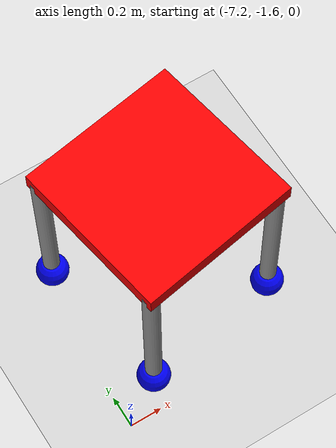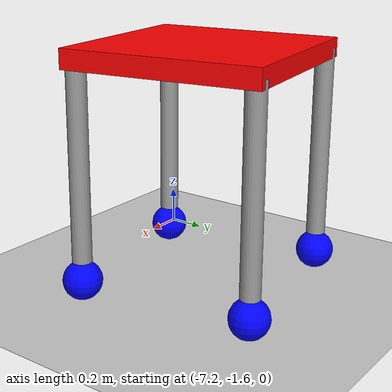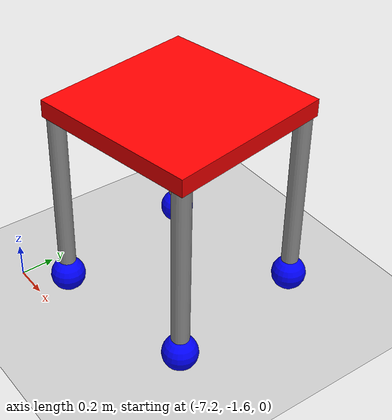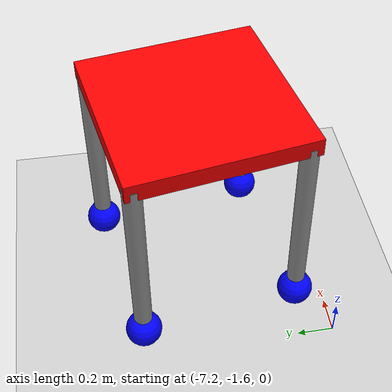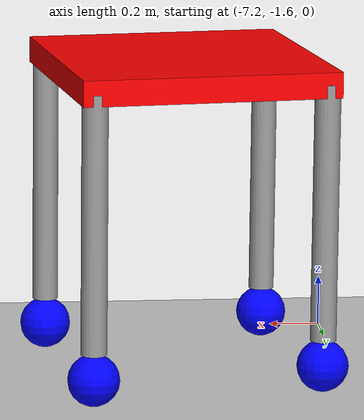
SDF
<sdf version="1.6">
 <world name="default">
  <model name="ground_plane">
   <static>1</static>
   <link name="link">
    <collision name="collision">
     <geometry><plane><normal>0 0 1</normal><size>100 100</size></plane></geometry>
     <surface><friction><ode><mu>100</mu><mu2>50</mu2></ode></friction></surface>
    </collision>
    <visual name="visual">
     <cast_shadows>0</cast_shadows>
     <geometry><plane><normal>0 0 1</normal><size>100 100</size></plane></geometry>
     <material>
      <script><uri>file://media/materials/scripts/gazebo.material</uri><name>Gazebo/Grey</name></script>
     </material>
    </visual>
   </link>
  </model>
  <model name="Robo_Model_3">
   <link name="link_0">
    <pose>-0.003409 0.00263 0.716269 0 -0 0</pose>
    <inertial>
     <mass>1</mass>
     <inertia>
      <ixx>0.166667</ixx>
      <ixy>0</ixy>
      <ixz>0</ixz>
      <iyy>0.166667</iyy>
      <iyz>0</iyz>
      <izz>0.166667</izz>
     </inertia>
    </inertial>
    <visual name="visual">
     <geometry><box><size>1 1 0.1</size></box></geometry>
     <material>
      <lighting>1</lighting>
      <script><uri>file://media/materials/scripts/gazebo.material</uri><name>Gazebo/Grey</name></script>
      <shader type="pixel"><normal_map>__default__</normal_map></shader>
      <ambient>1 0 0 1</ambient>
      <diffuse>0.7 0.7 0.7 1</diffuse>
      <specular>0.01 0.01 0.01 1</specular>
      <emissive>0 0 0 1</emissive>
     </material>
    </visual>
    <collision name="collision">
     <geometry><box><size>1 1 0.1</size></box></geometry>
     <surface>
      <friction>
       <ode><mu>1</mu><mu2>1</mu2><fdir1>0 0 0</fdir1><slip1>0</slip1><slip2>0</slip2></ode>
       <torsional>
        <coefficient>1</coefficient>
        <patch_radius>0</patch_radius>
        <surface_radius>0</surface_radius>
        <use_patch_radius>1</use_patch_radius>
        <ode><slip>0</slip></ode>
       </torsional>
      </friction>
      <bounce><restitution_coefficient>0</restitution_coefficient><threshold>1e+06</threshold></bounce>
      <contact>
       <collide_without_contact>0</collide_without_contact>
       <collide_without_contact_bitmask>1</collide_without_contact_bitmask>
       <collide_bitmask>1</collide_bitmask>
       <ode>
        <soft_cfm>0</soft_cfm>
        <soft_erp>0.2</soft_erp>
        <kp>1e+13</kp>
        <kd>1</kd>
        <max_vel>0.01</max_vel>
        <min_depth>0</min_depth>
       </ode>
       <bullet>
        <split_impulse>1</split_impulse>
        <split_impulse_penetration_threshold>-0.01</split_impulse_penetration_threshold>
        <soft_cfm>0</soft_cfm>
        <soft_erp>0.2</soft_erp>
        <kp>1e+13</kp>
        <kd>1</kd>
       </bullet>
      </contact>
     </surface>
    </collision>
   </link>
   <link name="link_1">
    <pose>0.450427 -0.450329 0.216269 0 -0 0</pose>
    <inertial>
     <mass>1</mass>
     <inertia><ixx>0.145833</ixx><ixy>0</ixy><ixz>0</ixz><iyy>0.145833</iyy><iyz>0</iyz><izz>0.125</izz></inertia>
    </inertial>
    <visual name="visual">
     <geometry><cylinder><radius>0.05</radius><length>1</length></cylinder></geometry>
     <material>
      <lighting>1</lighting>
      <script><uri>file://media/materials/scripts/gazebo.material</uri><name>Gazebo/Grey</name></script>
      <shader type="pixel"><normal_map>__default__</normal_map></shader>
      <ambient>0.3 0.3 0.3 1</ambient>
      <diffuse>0.7 0.7 0.7 1</diffuse>
      <specular>0.01 0.01 0.01 1</specular>
      <emissive>0 0 0 1</emissive>
     </material>
    </visual>
    <collision name="collision">
     <geometry><cylinder><radius>0.05</radius><length>1</length></cylinder></geometry>
     <surface>
      <friction>
       <ode><mu>1</mu><mu2>1</mu2><fdir1>0 0 0</fdir1><slip1>0</slip1><slip2>0</slip2></ode>
       <torsional>
        <coefficient>1</coefficient>
        <patch_radius>0</patch_radius>
        <surface_radius>0</surface_radius>
        <use_patch_radius>1</use_patch_radius>
        <ode><slip>0</slip></ode>
       </torsional>
      </friction>
      <bounce><restitution_coefficient>0</restitution_coefficient><threshold>1e+06</threshold></bounce>
      <contact>
       <collide_without_contact>0</collide_without_contact>
       <collide_without_contact_bitmask>1</collide_without_contact_bitmask>
       <collide_bitmask>1</collide_bitmask>
       <ode>
        <soft_cfm>0</soft_cfm>
        <soft_erp>0.2</soft_erp>
        <kp>1e+13</kp>
        <kd>1</kd>
        <max_vel>0.01</max_vel>
        <min_depth>0</min_depth>
       </ode>
       <bullet>
        <split_impulse>1</split_impulse>
        <split_impulse_penetration_threshold>-0.01</split_impulse_penetration_threshold>
        <soft_cfm>0</soft_cfm>
        <soft_erp>0.2</soft_erp>
        <kp>1e+13</kp>
        <kd>1</kd>
       </bullet>
      </contact>
     </surface>
    </collision>
   </link>
   <link name="link_1_clone">
    <pose>-0.449573 -0.450329 0.208531 0 -0 0</pose>
    <inertial>
     <mass>1</mass>
     <inertia><ixx>0.145833</ixx><ixy>0</ixy><ixz>0</ixz><iyy>0.145833</iyy><iyz>0</iyz><izz>0.125</izz></inertia>
    </inertial>
    <visual name="visual">
     <geometry><cylinder><radius>0.05</radius><length>1</length></cylinder></geometry>
     <material>
      <lighting>1</lighting>
      <script><uri>file://media/materials/scripts/gazebo.material</uri><name>Gazebo/Grey</name></script>
      <shader type="pixel"><normal_map>__default__</normal_map></shader>
      <ambient>0.3 0.3 0.3 1</ambient>
      <diffuse>0.7 0.7 0.7 1</diffuse>
      <specular>0.01 0.01 0.01 1</specular>
      <emissive>0 0 0 1</emissive>
     </material>
    </visual>
    <collision name="collision">
     <geometry><cylinder><radius>0.05</radius><length>1</length></cylinder></geometry>
     <surface>
      <friction>
       <ode><mu>1</mu><mu2>1</mu2><fdir1>0 0 0</fdir1><slip1>0</slip1><slip2>0</slip2></ode>
       <torsional>
        <coefficient>1</coefficient>
        <patch_radius>0</patch_radius>
        <surface_radius>0</surface_radius>
        <use_patch_radius>1</use_patch_radius>
        <ode><slip>0</slip></ode>
       </torsional>
      </friction>
      <bounce><restitution_coefficient>0</restitution_coefficient><threshold>1e+06</threshold></bounce>
      <contact>
       <collide_without_contact>0</collide_without_contact>
       <collide_without_contact_bitmask>1</collide_without_contact_bitmask>
       <collide_bitmask>1</collide_bitmask>
       <ode>
        <soft_cfm>0</soft_cfm>
        <soft_erp>0.2</soft_erp>
        <kp>1e+13</kp>
        <kd>1</kd>
        <max_vel>0.01</max_vel>
        <min_depth>0</min_depth>
       </ode>
       <bullet>
        <split_impulse>1</split_impulse>
        <split_impulse_penetration_threshold>-0.01</split_impulse_penetration_threshold>
        <soft_cfm>0</soft_cfm>
        <soft_erp>0.2</soft_erp>
        <kp>1e+13</kp>
        <kd>1</kd>
       </bullet>
      </contact>
     </surface>
    </collision>
   </link>
   <link name="link_1_clone_clone">
    <pose>-0.449573 0.449671 0.208532 0 -0 0</pose>
    <inertial>
     <mass>1</mass>
     <inertia><ixx>0.145833</ixx><ixy>0</ixy><ixz>0</ixz><iyy>0.145833</iyy><iyz>0</iyz><izz>0.125</izz></inertia>
    </inertial>
    <visual name="visual">
     <geometry><cylinder><radius>0.05</radius><length>1</length></cylinder></geometry>
     <material>
      <lighting>1</lighting>
      <script><uri>file://media/materials/scripts/gazebo.material</uri><name>Gazebo/Grey</name></script>
      <shader type="pixel"><normal_map>__default__</normal_map></shader>
      <ambient>0.3 0.3 0.3 1</ambient>
      <diffuse>0.7 0.7 0.7 1</diffuse>
      <specular>0.01 0.01 0.01 1</specular>
      <emissive>0 0 0 1</emissive>
     </material>
    </visual>
    <collision name="collision">
     <geometry><cylinder><radius>0.05</radius><length>1</length></cylinder></geometry>
     <surface>
      <friction>
       <ode><mu>1</mu><mu2>1</mu2><fdir1>0 0 0</fdir1><slip1>0</slip1><slip2>0</slip2></ode>
       <torsional>
        <coefficient>1</coefficient>
        <patch_radius>0</patch_radius>
        <surface_radius>0</surface_radius>
        <use_patch_radius>1</use_patch_radius>
        <ode><slip>0</slip></ode>
       </torsional>
      </friction>
      <bounce><restitution_coefficient>0</restitution_coefficient><threshold>1e+06</threshold></bounce>
      <contact>
       <collide_without_contact>0</collide_without_contact>
       <collide_without_contact_bitmask>1</collide_without_contact_bitmask>
       <collide_bitmask>1</collide_bitmask>
       <ode>
        <soft_cfm>0</soft_cfm>
        <soft_erp>0.2</soft_erp>
        <kp>1e+13</kp>
        <kd>1</kd>
        <max_vel>0.01</max_vel>
        <min_depth>0</min_depth>
       </ode>
       <bullet>
        <split_impulse>1</split_impulse>
        <split_impulse_penetration_threshold>-0.01</split_impulse_penetration_threshold>
        <soft_cfm>0</soft_cfm>
        <soft_erp>0.2</soft_erp>
        <kp>1e+13</kp>
        <kd>1</kd>
       </bullet>
      </contact>
     </surface>
    </collision>
   </link>
   <link name="link_1_clone_clone_clone">
    <pose>0.450427 0.449671 0.208532 0 -0 0</pose>
    <inertial>
     <mass>1</mass>
     <inertia><ixx>0.145833</ixx><ixy>0</ixy><ixz>0</ixz><iyy>0.145833</iyy><iyz>0</iyz><izz>0.125</izz></inertia>
    </inertial>
    <visual name="visual">
     <geometry><cylinder><radius>0.05</radius><length>1</length></cylinder></geometry>
     <material>
      <lighting>1</lighting>
      <script><uri>file://media/materials/scripts/gazebo.material</uri><name>Gazebo/Grey</name></script>
      <shader type="pixel"><normal_map>__default__</normal_map></shader>
      <ambient>0.3 0.3 0.3 1</ambient>
      <diffuse>0.7 0.7 0.7 1</diffuse>
      <specular>0.01 0.01 0.01 1</specular>
      <emissive>0 0 0 1</emissive>
     </material>
    </visual>
    <collision name="collision">
     <geometry><cylinder><radius>0.05</radius><length>1</length></cylinder></geometry>
     <surface>
      <friction>
       <ode><mu>1</mu><mu2>1</mu2><fdir1>0 0 0</fdir1><slip1>0</slip1><slip2>0</slip2></ode>
       <torsional>
        <coefficient>1</coefficient>
        <patch_radius>0</patch_radius>
        <surface_radius>0</surface_radius>
        <use_patch_radius>1</use_patch_radius>
        <ode><slip>0</slip></ode>
       </torsional>
      </friction>
      <bounce><restitution_coefficient>0</restitution_coefficient><threshold>1e+06</threshold></bounce>
      <contact>
       <collide_without_contact>0</collide_without_contact>
       <collide_without_contact_bitmask>1</collide_without_contact_bitmask>
       <collide_bitmask>1</collide_bitmask>
       <ode>
        <soft_cfm>0</soft_cfm>
        <soft_erp>0.2</soft_erp>
        <kp>1e+13</kp>
        <kd>1</kd>
        <max_vel>0.01</max_vel>
        <min_depth>0</min_depth>
       </ode>
       <bullet>
        <split_impulse>1</split_impulse>
        <split_impulse_penetration_threshold>-0.01</split_impulse_penetration_threshold>
        <soft_cfm>0</soft_cfm>
        <soft_erp>0.2</soft_erp>
        <kp>1e+13</kp>
        <kd>1</kd>
       </bullet>
      </contact>
     </surface>
    </collision>
   </link>
   <link name="link_2">
    <pose>0.450427 -0.450329 -0.383731 0 -0 0</pose>
    <inertial>
     <mass>1</mass>
     <inertia><ixx>0.1</ixx><ixy>0</ixy><ixz>0</ixz><iyy>0.1</iyy><iyz>0</iyz><izz>0.1</izz></inertia>
    </inertial>
    <visual name="visual">
     <geometry><sphere><radius>0.1</radius></sphere></geometry>
     <material>
      <lighting>1</lighting>
      <script><uri>file://media/materials/scripts/gazebo.material</uri><name>Gazebo/Grey</name></script>
      <shader type="pixel"><normal_map>__default__</normal_map></shader>
      <ambient>0 0 1 1</ambient>
      <diffuse>0.7 0.7 0.7 1</diffuse>
      <specular>0.01 0.01 0.01 1</specular>
      <emissive>0 0 0 1</emissive>
     </material>
    </visual>
    <collision name="collision">
     <geometry><sphere><radius>0.1</radius></sphere></geometry>
     <surface>
      <friction>
       <ode><mu>1</mu><mu2>1</mu2><fdir1>0 0 0</fdir1><slip1>0</slip1><slip2>0</slip2></ode>
       <torsional>
        <coefficient>1</coefficient>
        <patch_radius>0</patch_radius>
        <surface_radius>0</surface_radius>
        <use_patch_radius>1</use_patch_radius>
        <ode><slip>0</slip></ode>
       </torsional>
      </friction>
      <bounce><restitution_coefficient>0</restitution_coefficient><threshold>1e+06</threshold></bounce>
      <contact>
       <collide_without_contact>0</collide_without_contact>
       <collide_without_contact_bitmask>1</collide_without_contact_bitmask>
       <collide_bitmask>1</collide_bitmask>
       <ode>
        <soft_cfm>0</soft_cfm>
        <soft_erp>0.2</soft_erp>
        <kp>1e+13</kp>
        <kd>1</kd>
        <max_vel>0.01</max_vel>
        <min_depth>0</min_depth>
       </ode>
       <bullet>
        <split_impulse>1</split_impulse>
        <split_impulse_penetration_threshold>-0.01</split_impulse_penetration_threshold>
        <soft_cfm>0</soft_cfm>
        <soft_erp>0.2</soft_erp>
        <kp>1e+13</kp>
        <kd>1</kd>
       </bullet>
      </contact>
     </surface>
    </collision>
   </link>
   <link name="link_2_clone">
    <pose>0.450427 0.449671 -0.391468 0 -0 0</pose>
    <inertial>
     <mass>1</mass>
     <inertia><ixx>0.1</ixx><ixy>0</ixy><ixz>0</ixz><iyy>0.1</iyy><iyz>0</iyz><izz>0.1</izz></inertia>
    </inertial>
    <visual name="visual">
     <geometry><sphere><radius>0.1</radius></sphere></geometry>
     <material>
      <lighting>1</lighting>
      <script><uri>file://media/materials/scripts/gazebo.material</uri><name>Gazebo/Grey</name></script>
      <shader type="pixel"><normal_map>__default__</normal_map></shader>
      <ambient>0 0 1 1</ambient>
      <diffuse>0.7 0.7 0.7 1</diffuse>
      <specular>0.01 0.01 0.01 1</specular>
      <emissive>0 0 0 1</emissive>
     </material>
    </visual>
    <collision name="collision">
     <geometry><sphere><radius>0.1</radius></sphere></geometry>
     <surface>
      <friction>
       <ode><mu>1</mu><mu2>1</mu2><fdir1>0 0 0</fdir1><slip1>0</slip1><slip2>0</slip2></ode>
       <torsional>
        <coefficient>1</coefficient>
        <patch_radius>0</patch_radius>
        <surface_radius>0</surface_radius>
        <use_patch_radius>1</use_patch_radius>
        <ode><slip>0</slip></ode>
       </torsional>
      </friction>
      <bounce><restitution_coefficient>0</restitution_coefficient><threshold>1e+06</threshold></bounce>
      <contact>
       <collide_without_contact>0</collide_without_contact>
       <collide_without_contact_bitmask>1</collide_without_contact_bitmask>
       <collide_bitmask>1</collide_bitmask>
       <ode>
        <soft_cfm>0</soft_cfm>
        <soft_erp>0.2</soft_erp>
        <kp>1e+13</kp>
        <kd>1</kd>
        <max_vel>0.01</max_vel>
        <min_depth>0</min_depth>
       </ode>
       <bullet>
        <split_impulse>1</split_impulse>
        <split_impulse_penetration_threshold>-0.01</split_impulse_penetration_threshold>
        <soft_cfm>0</soft_cfm>
        <soft_erp>0.2</soft_erp>
        <kp>1e+13</kp>
        <kd>1</kd>
       </bullet>
      </contact>
     </surface>
    </collision>
   </link>
   <link name="link_2_clone_clone">
    <pose>-0.449573 0.449671 -0.391468 0 -0 0</pose>
    <inertial>
     <mass>1</mass>
     <inertia><ixx>0.1</ixx><ixy>0</ixy><ixz>0</ixz><iyy>0.1</iyy><iyz>0</iyz><izz>0.1</izz></inertia>
    </inertial>
    <visual name="visual">
     <geometry><sphere><radius>0.1</radius></sphere></geometry>
     <material>
      <lighting>1</lighting>
      <script><uri>file://media/materials/scripts/gazebo.material</uri><name>Gazebo/Grey</name></script>
      <shader type="pixel"><normal_map>__default__</normal_map></shader>
      <ambient>0 0 1 1</ambient>
      <diffuse>0.7 0.7 0.7 1</diffuse>
      <specular>0.01 0.01 0.01 1</specular>
      <emissive>0 0 0 1</emissive>
     </material>
    </visual>
    <collision name="collision">
     <geometry><sphere><radius>0.1</radius></sphere></geometry>
     <surface>
      <friction>
       <ode><mu>1</mu><mu2>1</mu2><fdir1>0 0 0</fdir1><slip1>0</slip1><slip2>0</slip2></ode>
       <torsional>
        <coefficient>1</coefficient>
        <patch_radius>0</patch_radius>
        <surface_radius>0</surface_radius>
        <use_patch_radius>1</use_patch_radius>
        <ode><slip>0</slip></ode>
       </torsional>
      </friction>
      <bounce><restitution_coefficient>0</restitution_coefficient><threshold>1e+06</threshold></bounce>
      <contact>
       <collide_without_contact>0</collide_without_contact>
       <collide_without_contact_bitmask>1</collide_without_contact_bitmask>
       <collide_bitmask>1</collide_bitmask>
       <ode>
        <soft_cfm>0</soft_cfm>
        <soft_erp>0.2</soft_erp>
        <kp>1e+13</kp>
        <kd>1</kd>
        <max_vel>0.01</max_vel>
        <min_depth>0</min_depth>
       </ode>
       <bullet>
        <split_impulse>1</split_impulse>
        <split_impulse_penetration_threshold>-0.01</split_impulse_penetration_threshold>
        <soft_cfm>0</soft_cfm>
        <soft_erp>0.2</soft_erp>
        <kp>1e+13</kp>
        <kd>1</kd>
       </bullet>
      </contact>
     </surface>
    </collision>
   </link>
   <link name="link_2_clone_clone_clone">
    <pose>-0.449573 -0.450329 -0.391469 0 -0 0</pose>
    <inertial>
     <mass>1</mass>
     <inertia><ixx>0.1</ixx><ixy>0</ixy><ixz>0</ixz><iyy>0.1</iyy><iyz>0</iyz><izz>0.1</izz></inertia>
    </inertial>
    <visual name="visual">
     <geometry><sphere><radius>0.1</radius></sphere></geometry>
     <material>
      <lighting>1</lighting>
      <script><uri>file://media/materials/scripts/gazebo.material</uri><name>Gazebo/Grey</name></script>
      <shader type="pixel"><normal_map>__default__</normal_map></shader>
      <ambient>0 0 1 1</ambient>
      <diffuse>0.7 0.7 0.7 1</diffuse>
      <specular>0.01 0.01 0.01 1</specular>
      <emissive>0 0 0 1</emissive>
     </material>
    </visual>
    <collision name="collision">
     <geometry><sphere><radius>0.1</radius></sphere></geometry>
     <surface>
      <friction>
       <ode><mu>1</mu><mu2>1</mu2><fdir1>0 0 0</fdir1><slip1>0</slip1><slip2>0</slip2></ode>
       <torsional>
        <coefficient>1</coefficient>
        <patch_radius>0</patch_radius>
        <surface_radius>0</surface_radius>
        <use_patch_radius>1</use_patch_radius>
        <ode><slip>0</slip></ode>
       </torsional>
      </friction>
      <bounce><restitution_coefficient>0</restitution_coefficient><threshold>1e+06</threshold></bounce>
      <contact>
       <collide_without_contact>0</collide_without_contact>
       <collide_without_contact_bitmask>1</collide_without_contact_bitmask>
       <collide_bitmask>1</collide_bitmask>
       <ode>
        <soft_cfm>0</soft_cfm>
        <soft_erp>0.2</soft_erp>
        <kp>1e+13</kp>
        <kd>1</kd>
        <max_vel>0.01</max_vel>
        <min_depth>0</min_depth>
       </ode>
       <bullet>
        <split_impulse>1</split_impulse>
        <split_impulse_penetration_threshold>-0.01</split_impulse_penetration_threshold>
        <soft_cfm>0</soft_cfm>
        <soft_erp>0.2</soft_erp>
        <kp>1e+13</kp>
        <kd>1</kd>
       </bullet>
      </contact>
     </surface>
    </collision>
   </link>
   <joint name="link_0_JOINT_3" type="fixed">
    <parent>link_0</parent>
    <child>link_1</child>
    <physics>
     <ode><limit><cfm>0</cfm><erp>0.2</erp></limit><suspension><cfm>0</cfm><erp>0.2</erp></suspension></ode>
    </physics>
   </joint>
   <joint name="link_0_JOINT_4" type="fixed">
    <parent>link_0</parent>
    <child>link_1_clone_clone</child>
    <physics>
     <ode><limit><cfm>0</cfm><erp>0.2</erp></limit><suspension><cfm>0</cfm><erp>0.2</erp></suspension></ode>
    </physics>
   </joint>
   <joint name="link_0_JOINT_5" type="fixed">
    <parent>link_0</parent>
    <child>link_1_clone_clone_clone</child>
    <physics>
     <ode><limit><cfm>0</cfm><erp>0.2</erp></limit><suspension><cfm>0</cfm><erp>0.2</erp></suspension></ode>
    </physics>
   </joint>
   <joint name="link_0_JOINT_6" type="fixed">
    <parent>link_0</parent>
    <child>link_1_clone_clone</child>
    <physics>
     <ode><limit><cfm>0</cfm><erp>0.2</erp></limit><suspension><cfm>0</cfm><erp>0.2</erp></suspension></ode>
    </physics>
   </joint>
   <joint name="link_0_JOINT_7" type="fixed">
    <parent>link_0</parent>
    <child>link_1_clone</child>
    <physics>
     <ode><limit><cfm>0</cfm><erp>0.2</erp></limit><suspension><cfm>0</cfm><erp>0.2</erp></suspension></ode>
    </physics>
   </joint>
   <joint name="link_1_JOINT_9" type="revolute2">
    <parent>link_1</parent>
    <child>link_2</child>
    <axis>
     <xyz>1 0 0</xyz>
     <use_parent_model_frame>0</use_parent_model_frame>
     <limit>
      <lower>-1.79769e+308</lower>
      <upper>1.79769e+308</upper>
      <effort>-1</effort>
      <velocity>-1</velocity>
     </limit>
     <dynamics>
      <spring_reference>0</spring_reference>
      <spring_stiffness>0</spring_stiffness>
      <damping>0</damping>
     </dynamics>
    </axis>
    <axis2>
     <xyz>0 1 0</xyz>
     <use_parent_model_frame>0</use_parent_model_frame>
     <dynamics>
      <spring_reference>0</spring_reference>
      <spring_stiffness>0</spring_stiffness>
      <damping>0</damping>
     </dynamics>
     <limit>
      <lower>-1.79769e+308</lower>
      <upper>1.79769e+308</upper>
      <effort>-1</effort>
      <velocity>-1</velocity>
     </limit>
    </axis2>
    <physics>
     <ode><limit><cfm>0</cfm><erp>0.2</erp></limit><suspension><cfm>0</cfm><erp>0.2</erp></suspension></ode>
    </physics>
   </joint>
   <joint name="link_1_clone_JOINT_8" type="revolute2">
    <parent>link_1_clone</parent>
    <child>link_2_clone_clone_clone</child>
    <axis>
     <xyz>1 0 0</xyz>
     <use_parent_model_frame>0</use_parent_model_frame>
     <limit>
      <lower>-1.79769e+308</lower>
      <upper>1.79769e+308</upper>
      <effort>-1</effort>
      <velocity>-1</velocity>
     </limit>
     <dynamics>
      <spring_reference>0</spring_reference>
      <spring_stiffness>0</spring_stiffness>
      <damping>0</damping>
     </dynamics>
    </axis>
    <axis2>
     <xyz>0 1 0</xyz>
     <use_parent_model_frame>0</use_parent_model_frame>
     <dynamics>
      <spring_reference>0</spring_reference>
      <spring_stiffness>0</spring_stiffness>
      <damping>0</damping>
     </dynamics>
     <limit>
      <lower>-1.79769e+308</lower>
      <upper>1.79769e+308</upper>
      <effort>-1</effort>
      <velocity>-1</velocity>
     </limit>
    </axis2>
    <physics>
     <ode><limit><cfm>0</cfm><erp>0.2</erp></limit><suspension><cfm>0</cfm><erp>0.2</erp></suspension></ode>
    </physics>
   </joint>
   <joint name="link_1_clone_clone_JOINT_11" type="revolute2">
    <parent>link_1_clone_clone</parent>
    <child>link_2_clone_clone</child>
    <axis>
     <xyz>1 0 0</xyz>
     <use_parent_model_frame>0</use_parent_model_frame>
     <limit>
      <lower>-1.79769e+308</lower>
      <upper>1.79769e+308</upper>
      <effort>-1</effort>
      <velocity>-1</velocity>
     </limit>
     <dynamics>
      <spring_reference>0</spring_reference>
      <spring_stiffness>0</spring_stiffness>
      <damping>0</damping>
     </dynamics>
    </axis>
    <axis2>
     <xyz>0 1 0</xyz>
     <use_parent_model_frame>0</use_parent_model_frame>
     <dynamics>
      <spring_reference>0</spring_reference>
      <spring_stiffness>0</spring_stiffness>
      <damping>0</damping>
     </dynamics>
     <limit>
      <lower>-1.79769e+308</lower>
      <upper>1.79769e+308</upper>
      <effort>-1</effort>
      <velocity>-1</velocity>
     </limit>
    </axis2>
    <physics>
     <ode><limit><cfm>0</cfm><erp>0.2</erp></limit><suspension><cfm>0</cfm><erp>0.2</erp></suspension></ode>
    </physics>
   </joint>
   <joint name="link_1_clone_clone_clone_JOINT_10" type="revolute2">
    <parent>link_1_clone_clone_clone</parent>
    <child>link_2_clone</child>
    <axis>
     <xyz>1 0 0</xyz>
     <use_parent_model_frame>0</use_parent_model_frame>
     <limit>
      <lower>-1.79769e+308</lower>
      <upper>1.79769e+308</upper>
      <effort>-1</effort>
      <velocity>-1</velocity>
     </limit>
     <dynamics>
      <spring_reference>0</spring_reference>
      <spring_stiffness>0</spring_stiffness>
      <damping>0</damping>
     </dynamics>
    </axis>
    <axis2>
     <xyz>0 1 0</xyz>
     <use_parent_model_frame>0</use_parent_model_frame>
     <dynamics>
      <spring_reference>0</spring_reference>
      <spring_stiffness>0</spring_stiffness>
      <damping>0</damping>
     </dynamics>
     <limit>
      <lower>-1.79769e+308</lower>
      <upper>1.79769e+308</upper>
      <effort>-1</effort>
      <velocity>-1</velocity>
     </limit>
    </axis2>
    <physics>
     <ode><limit><cfm>0</cfm><erp>0.2</erp></limit><suspension><cfm>0</cfm><erp>0.2</erp></suspension></ode>
    </physics>
   </joint>
   <static>0</static>
   <pose>-6.58243 -0.908202 0.491441 0.008593 0.008589 -2.96761</pose>
  </model>
 </world>
</sdf>
